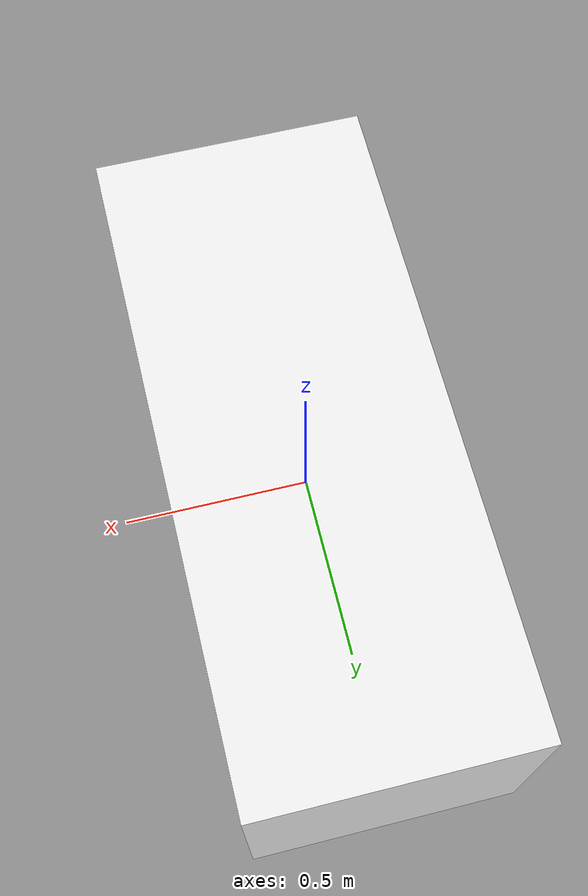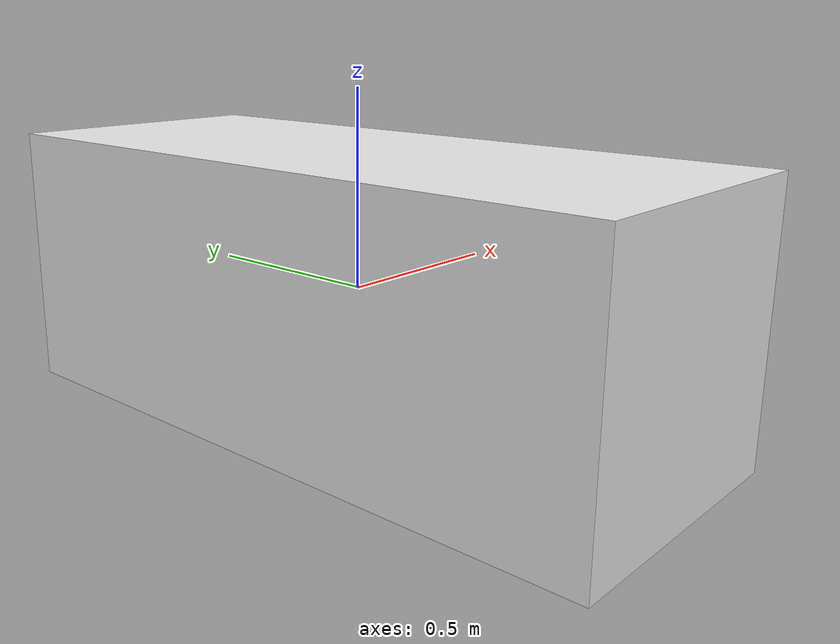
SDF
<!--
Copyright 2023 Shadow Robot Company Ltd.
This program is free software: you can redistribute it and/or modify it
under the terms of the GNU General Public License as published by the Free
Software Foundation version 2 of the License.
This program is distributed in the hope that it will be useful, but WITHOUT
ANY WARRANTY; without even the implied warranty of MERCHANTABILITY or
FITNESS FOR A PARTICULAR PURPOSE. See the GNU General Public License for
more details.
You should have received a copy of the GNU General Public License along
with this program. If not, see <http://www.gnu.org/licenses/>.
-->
<?xml version='1.0'?>

<sdf version="1.4">
<model name="folding_table">
    <static>true</static>
    <link name="link">
      <collision name="collision_folding_table">
        <geometry>
          <box>
            <size>0.74 1.8 0.7</size>
          </box>
        </geometry>
      </collision>
      <visual name="visual_folding_table">
        <geometry>
          <box>
            <size>0.74 1.8 0.7</size>
          </box>
        </geometry>
        <material>
          <script>
            <uri>file://media/materials/scripts/gazebo.material</uri>
            <name>Gazebo/White</name>
          </script>
        </material>
      </visual>
    </link>
  </model>
</sdf>
